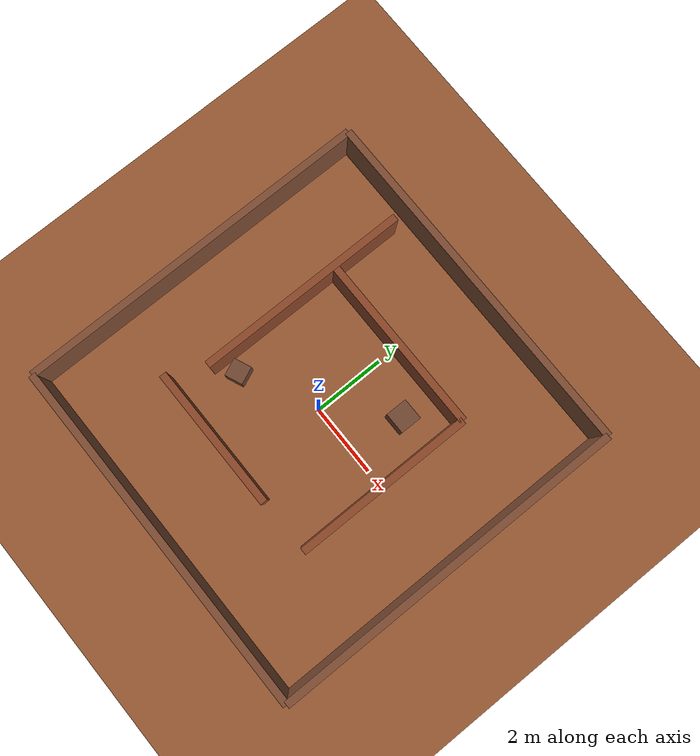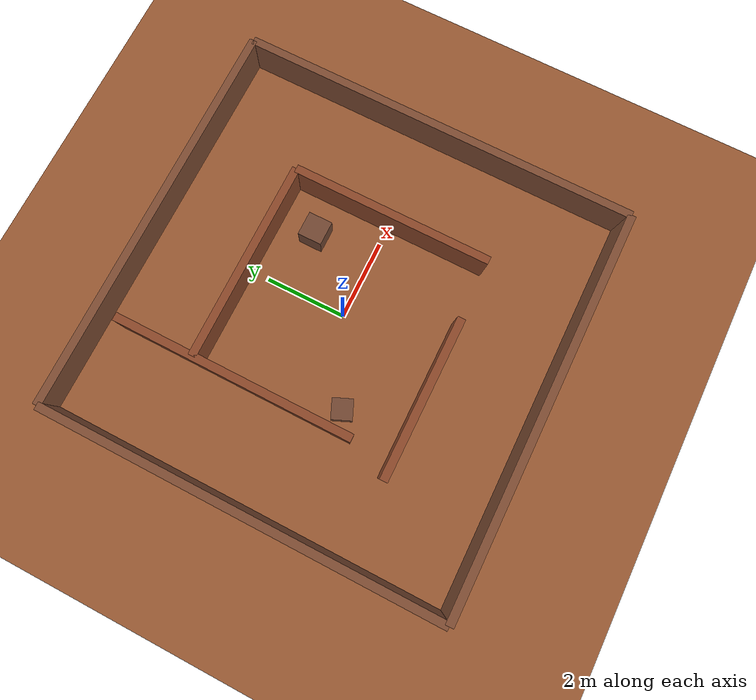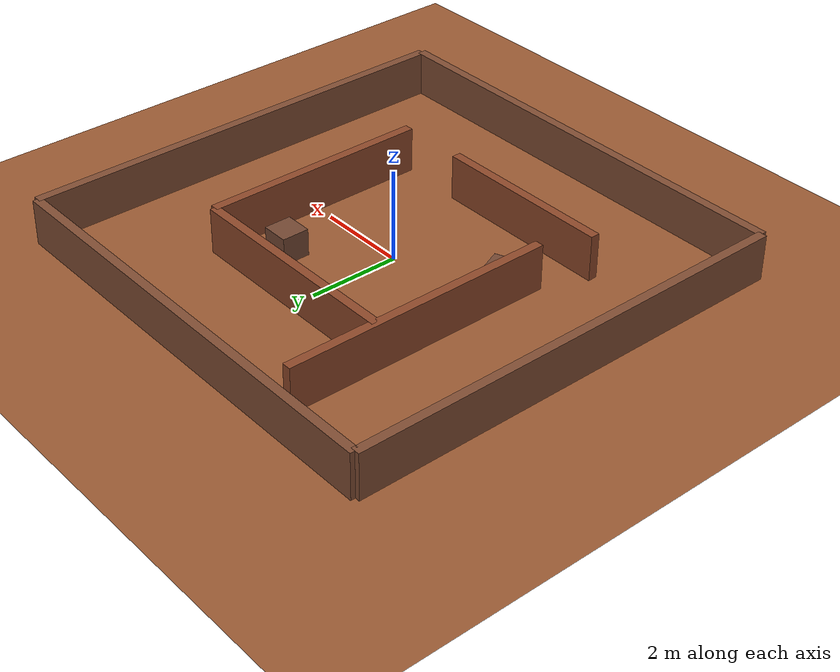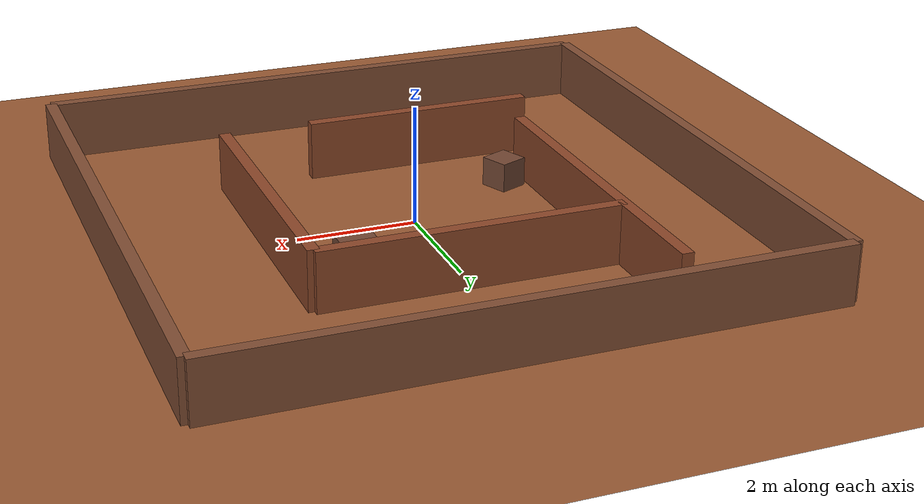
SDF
<?xml version="1.0" ?>
<sdf version="1.9">
<world name="benrover_world">

<plugin filename="ignition-gazebo-physics-system" name="ignition::gazebo::systems::Physics">
</plugin>
<plugin filename="ignition-gazebo-user-commands-system" name="ignition::gazebo::systems::UserCommands">
</plugin>
<plugin filename="ignition-gazebo-scene-broadcaster-system" name="ignition::gazebo::systems::SceneBroadcaster">
</plugin>

<plugin filename="ignition-gazebo-imu-system" name="ignition::gazebo::systems::Imu">
</plugin>

<plugin filename="ignition-gazebo-sensors-system" name="ignition::gazebo::systems::Sensors">
<render_engine>ogre2</render_engine>
</plugin>

<gravity>0 0 -9.8</gravity>

<light type="directional" name="sun">
<cast_shadows>true</cast_shadows>
<pose>0 0 10 0 0 0</pose>
<diffuse>0.7 0.55 0.45 1</diffuse>
<specular>0.15 0.12 0.1 1</specular>
<attenuation>
<range>1000</range>
<constant>0.9</constant>
<linear>0.01</linear>
<quadratic>0.001</quadratic>
</attenuation>
<direction>-0.5 0.1 -0.9</direction>
</light>

<!--
      Ciel/ambiance martienne (teinte ocre/rougeatre au lieu du bleu
      par defaut) - purement visuel, aide a distinguer d'un coup
      d'oeil ce monde des mondes "Terre" existants.
    -->
<scene>
<ambient>0.6 0.45 0.35 1</ambient>
<background>0.6 0.35 0.25 1</background>
<grid>false</grid>
</scene>

<model name="ground_plane">
<static>true</static>
<link name="link">
<collision name="collision">
<geometry>
<plane>
<normal>0 0 1</normal>
<size>100 100</size>
</plane>
</geometry>
<surface>
<friction>
<ode>
<mu>1.5</mu>
<mu2>1.5</mu2>
</ode>
</friction>
</surface>
</collision>
<visual name="visual">
<geometry>
<plane>
<normal>0 0 1</normal>
<size>100 100</size>
</plane>
</geometry>
<material>
<ambient>0.6 0.35 0.2 1</ambient>
<diffuse>0.6 0.35 0.2 1</diffuse>
<specular>0.2 0.15 0.1 1</specular>
</material>
</visual>
</link>
</model>

<model name="wall_north">
<static>true</static>
<pose>0 5 0.5 0 0 0</pose>
<link name="link">
<collision name="collision">
<geometry>
<box>
<size>10 0.2 1</size>
</box>
</geometry>
</collision>
<visual name="visual">
<geometry>
<box>
<size>10 0.2 1</size>
</box>
</geometry>
<material>
<ambient>0.5 0.3 0.2 1</ambient>
<diffuse>0.5 0.3 0.2 1</diffuse>
</material>
</visual>
</link>
</model>

<model name="wall_south">
<static>true</static>
<pose>0 -5 0.5 0 0 0</pose>
<link name="link">
<collision name="collision">
<geometry>
<box>
<size>10 0.2 1</size>
</box>
</geometry>
</collision>
<visual name="visual">
<geometry>
<box>
<size>10 0.2 1</size>
</box>
</geometry>
<material>
<ambient>0.5 0.3 0.2 1</ambient>
<diffuse>0.5 0.3 0.2 1</diffuse>
</material>
</visual>
</link>
</model>

<model name="wall_east">
<static>true</static>
<pose>5 0 0.5 0 0 1.5708</pose>
<link name="link">
<collision name="collision">
<geometry>
<box>
<size>10 0.2 1</size>
</box>
</geometry>
</collision>
<visual name="visual">
<geometry>
<box>
<size>10 0.2 1</size>
</box>
</geometry>
<material>
<ambient>0.5 0.3 0.2 1</ambient>
<diffuse>0.5 0.3 0.2 1</diffuse>
</material>
</visual>
</link>
</model>

<model name="wall_west">
<static>true</static>
<pose>-5 0 0.5 0 0 1.5708</pose>
<link name="link">
<collision name="collision">
<geometry>
<box>
<size>10 0.2 1</size>
</box>
</geometry>
</collision>
<visual name="visual">
<geometry>
<box>
<size>10 0.2 1</size>
</box>
</geometry>
<material>
<ambient>0.5 0.3 0.2 1</ambient>
<diffuse>0.5 0.3 0.2 1</diffuse>
</material>
</visual>
</link>
</model>

<model name="obstacle_rock_1">
<static>true</static>
<pose>1.5 1.5 0.3 0 0 0</pose>
<link name="link">
<collision name="collision">
<geometry>
<box>
<size>0.6 0.6 0.6</size>
</box>
</geometry>
</collision>
<visual name="visual">
<geometry>
<box>
<size>0.6 0.6 0.6</size>
</box>
</geometry>
<material>
<ambient>0.45 0.28 0.2 1</ambient>
<diffuse>0.45 0.28 0.2 1</diffuse>
</material>
</visual>
</link>
</model>

<model name="obstacle_rock_2">
<static>true</static>
<pose>-2 -1 0.25 0 0 0.4</pose>
<link name="link">
<collision name="collision">
<geometry>
<box>
<size>0.5 0.5 0.5</size>
</box>
</geometry>
</collision>
<visual name="visual">
<geometry>
<box>
<size>0.5 0.5 0.5</size>
</box>
</geometry>
<material>
<ambient>0.45 0.28 0.2 1</ambient>
<diffuse>0.45 0.28 0.2 1</diffuse>
</material>
</visual>
</link>
</model>

<!--
      Labyrinthe interne : les ouvertures alternent d'un mur a l'autre
      pour imposer plusieurs rotations sans enfermer le point de spawn.
    -->
<model name="maze_wall_1">
<static>true</static>
<pose>-2.5 1.5 0.5 0 0 0</pose>
<link name="link">
<collision name="collision">
<geometry>
<box>
<size>0.2 6.0 1.0</size>
</box>
</geometry>
</collision>
<visual name="visual">
<geometry>
<box>
<size>0.2 6.0 1.0</size>
</box>
</geometry>
<material>
<ambient>0.35 0.18 0.12 1</ambient>
<diffuse>0.55 0.28 0.16 1</diffuse>
</material>
</visual>
</link>
</model>

<model name="maze_wall_2">
<static>true</static>
<pose>0 2.5 0.5 0 0 0</pose>
<link name="link">
<collision name="collision">
<geometry>
<box>
<size>5.0 0.2 1.0</size>
</box>
</geometry>
</collision>
<visual name="visual">
<geometry>
<box>
<size>5.0 0.2 1.0</size>
</box>
</geometry>
<material>
<ambient>0.35 0.18 0.12 1</ambient>
<diffuse>0.55 0.28 0.16 1</diffuse>
</material>
</visual>
</link>
</model>

<model name="maze_wall_3">
<static>true</static>
<pose>2.5 0 0.5 0 0 0</pose>
<link name="link">
<collision name="collision">
<geometry>
<box>
<size>0.2 5.0 1.0</size>
</box>
</geometry>
</collision>
<visual name="visual">
<geometry>
<box>
<size>0.2 5.0 1.0</size>
</box>
</geometry>
<material>
<ambient>0.35 0.18 0.12 1</ambient>
<diffuse>0.55 0.28 0.16 1</diffuse>
</material>
</visual>
</link>
</model>

<model name="maze_wall_4">
<static>true</static>
<pose>-1.0 -2.5 0.5 0 0 0</pose>
<link name="link">
<collision name="collision">
<geometry>
<box>
<size>4.0 0.2 1.0</size>
</box>
</geometry>
</collision>
<visual name="visual">
<geometry>
<box>
<size>4.0 0.2 1.0</size>
</box>
</geometry>
<material>
<ambient>0.35 0.18 0.12 1</ambient>
<diffuse>0.55 0.28 0.16 1</diffuse>
</material>
</visual>
</link>
</model>

</world>
</sdf>
